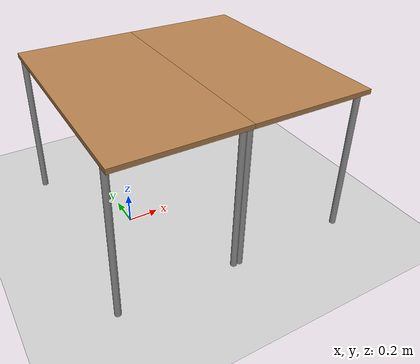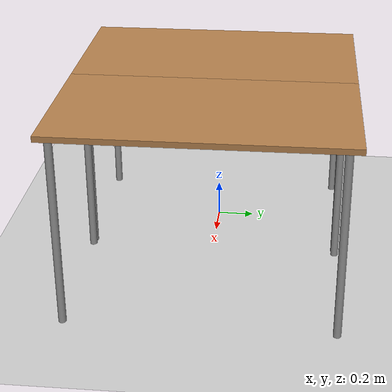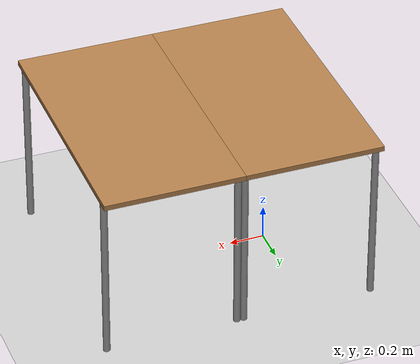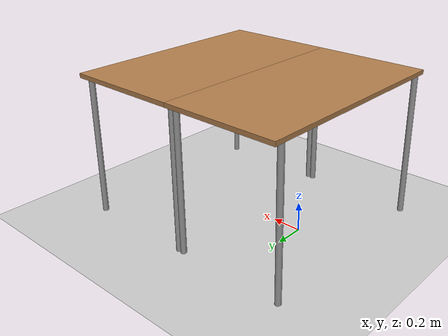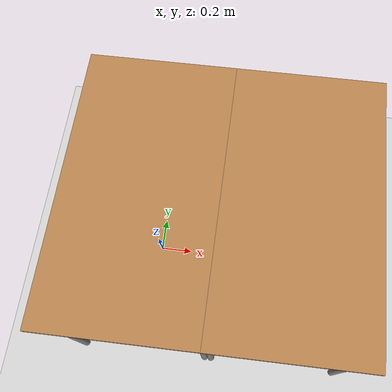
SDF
<sdf version='1.10'>
  <world name='empty'>
    <physics name='1ms' type='ignored'>
      <max_step_size>0.01</max_step_size>
      <real_time_factor>1</real_time_factor>
      <real_time_update_rate>1000</real_time_update_rate>
    </physics>
    <plugin name='gz::sim::systems::Physics' filename='gz-sim-physics-system'/>
    <plugin name='gz::sim::systems::UserCommands' filename='gz-sim-user-commands-system'/>
    <plugin name='gz::sim::systems::SceneBroadcaster' filename='gz-sim-scene-broadcaster-system'/>
    <plugin name='gz::sim::systems::Contact' filename='gz-sim-contact-system'/>
    <gravity>0 0 -9.8000000000000007</gravity>
    <magnetic_field>5.5644999999999998e-06 2.2875799999999999e-05 -4.2388400000000002e-05</magnetic_field>
    <atmosphere type='adiabatic'/>
    <scene>
      <ambient>0.400000006 0.400000006 0.400000006 1</ambient>
      <background>0.699999988 0.699999988 0.699999988 1</background>
      <shadows>true</shadows>
    </scene>
    <model name='ground_plane'>
      <static>true</static>
      <link name='link'>
        <collision name='collision'>
          <geometry>
            <plane>
              <normal>0 0 1</normal>
              <size>100 100</size>
            </plane>
          </geometry>
          <surface>
            <friction>
              <ode/>
            </friction>
            <bounce/>
            <contact/>
          </surface>
        </collision>
        <visual name='visual'>
          <geometry>
            <plane>
              <normal>0 0 1</normal>
              <size>100 100</size>
            </plane>
          </geometry>
          <material>
            <ambient>0.800000012 0.800000012 0.800000012 1</ambient>
            <diffuse>0.800000012 0.800000012 0.800000012 1</diffuse>
            <specular>0.800000012 0.800000012 0.800000012 1</specular>
          </material>
        </visual>
        <pose>0 0 0 0 0 0</pose>
        <inertial>
          <pose>0 0 0 0 0 0</pose>
          <mass>1</mass>
          <inertia>
            <ixx>1</ixx>
            <ixy>0</ixy>
            <ixz>0</ixz>
            <iyy>1</iyy>
            <iyz>0</iyz>
            <izz>1</izz>
          </inertia>
        </inertial>
        <enable_wind>false</enable_wind>
      </link>
      <pose>0 0 0 0 0 0</pose>
      <self_collide>false</self_collide>
    </model>
    <model name='Table'>
      <static>true</static>
      <link name='link'>
        <collision name='surface'>
          <pose>0 0 1 0 0 0</pose>
          <geometry>
            <box>
              <size>1.5 0.80000000000000004 0.029999999999999999</size>
            </box>
          </geometry>
          <surface>
            <friction>
              <ode>
                <mu>0.59999999999999998</mu>
                <mu2>0.59999999999999998</mu2>
              </ode>
            </friction>
            <bounce/>
            <contact/>
          </surface>
        </collision>
        <visual name='visual1'>
          <pose>0 0 1 0 0 0</pose>
          <geometry>
            <box>
              <size>1.5 0.80000000000000004 0.029999999999999999</size>
            </box>
          </geometry>
          <material>
            <diffuse>1 1 1 1</diffuse>
            <script>
              <uri>file://media/materials/scripts/gazebo.material</uri>
              <name>Gazebo/Wood</name>
            </script>
            <pbr>
              <metal>
                <albedo_map>https://fuel.gazebosim.org/1.0/openrobotics/models/table/4/files/Table_Diffuse.jpg</albedo_map>
              </metal>
            </pbr>
          </material>
        </visual>
        <collision name='front_left_leg'>
          <pose>0.68000000000000005 0.38 0.5 0 0 0</pose>
          <geometry>
            <cylinder>
              <radius>0.02</radius>
              <length>1</length>
            </cylinder>
          </geometry>
          <surface>
            <friction>
              <ode/>
            </friction>
            <bounce/>
            <contact/>
          </surface>
        </collision>
        <visual name='front_left_leg'>
          <pose>0.68000000000000005 0.38 0.5 0 0 0</pose>
          <geometry>
            <cylinder>
              <radius>0.02</radius>
              <length>1</length>
            </cylinder>
          </geometry>
          <material>
            <diffuse>0.5 0.5 0.5 1</diffuse>
            <script>
              <uri>file://media/materials/scripts/gazebo.material</uri>
              <name>Gazebo/Grey</name>
            </script>
          </material>
        </visual>
        <collision name='front_right_leg'>
          <pose>0.68000000000000005 -0.38 0.5 0 0 0</pose>
          <geometry>
            <cylinder>
              <radius>0.02</radius>
              <length>1</length>
            </cylinder>
          </geometry>
          <surface>
            <friction>
              <ode/>
            </friction>
            <bounce/>
            <contact/>
          </surface>
        </collision>
        <visual name='front_right_leg'>
          <pose>0.68000000000000005 -0.38 0.5 0 0 0</pose>
          <geometry>
            <cylinder>
              <radius>0.02</radius>
              <length>1</length>
            </cylinder>
          </geometry>
          <material>
            <diffuse>0.5 0.5 0.5 1</diffuse>
            <script>
              <uri>file://media/materials/scripts/gazebo.material</uri>
              <name>Gazebo/Grey</name>
            </script>
          </material>
        </visual>
        <collision name='back_right_leg'>
          <pose>-0.68000000000000005 -0.38 0.5 0 0 0</pose>
          <geometry>
            <cylinder>
              <radius>0.02</radius>
              <length>1</length>
            </cylinder>
          </geometry>
          <surface>
            <friction>
              <ode/>
            </friction>
            <bounce/>
            <contact/>
          </surface>
        </collision>
        <visual name='back_right_leg'>
          <pose>-0.68000000000000005 -0.38 0.5 0 0 0</pose>
          <geometry>
            <cylinder>
              <radius>0.02</radius>
              <length>1</length>
            </cylinder>
          </geometry>
          <material>
            <diffuse>0.5 0.5 0.5 1</diffuse>
            <script>
              <uri>file://media/materials/scripts/gazebo.material</uri>
              <name>Gazebo/Grey</name>
            </script>
          </material>
        </visual>
        <collision name='back_left_leg'>
          <pose>-0.68000000000000005 0.38 0.5 0 0 0</pose>
          <geometry>
            <cylinder>
              <radius>0.02</radius>
              <length>1</length>
            </cylinder>
          </geometry>
          <surface>
            <friction>
              <ode/>
            </friction>
            <bounce/>
            <contact/>
          </surface>
        </collision>
        <visual name='back_left_leg'>
          <pose>-0.68000000000000005 0.38 0.5 0 0 0</pose>
          <geometry>
            <cylinder>
              <radius>0.02</radius>
              <length>1</length>
            </cylinder>
          </geometry>
          <material>
            <diffuse>0.5 0.5 0.5 1</diffuse>
            <script>
              <uri>file://media/materials/scripts/gazebo.material</uri>
              <name>Gazebo/Grey</name>
            </script>
          </material>
        </visual>
        <pose>0 0 0 0 0 0</pose>
        <inertial>
          <pose>0 0 0 0 0 0</pose>
          <mass>1</mass>
          <inertia>
            <ixx>1</ixx>
            <ixy>0</ixy>
            <ixz>0</ixz>
            <iyy>1</iyy>
            <iyz>0</iyz>
            <izz>1</izz>
          </inertia>
        </inertial>
        <enable_wind>false</enable_wind>
      </link>
      <pose>0 0 0 0 0 1.57079</pose>
      <self_collide>false</self_collide>
    </model>
    <model name='Table_0'>
      <static>true</static>
      <link name='link'>
        <collision name='surface'>
          <pose>0 0 1 0 0 0</pose>
          <geometry>
            <box>
              <size>1.5 0.80000000000000004 0.029999999999999999</size>
            </box>
          </geometry>
          <surface>
            <friction>
              <ode>
                <mu>0.59999999999999998</mu>
                <mu2>0.59999999999999998</mu2>
              </ode>
            </friction>
            <bounce/>
            <contact/>
          </surface>
        </collision>
        <visual name='visual1'>
          <pose>0 0 1 0 0 0</pose>
          <geometry>
            <box>
              <size>1.5 0.80000000000000004 0.029999999999999999</size>
            </box>
          </geometry>
          <material>
            <diffuse>1 1 1 1</diffuse>
            <script>
              <uri>file://media/materials/scripts/gazebo.material</uri>
              <name>Gazebo/Wood</name>
            </script>
            <pbr>
              <metal>
                <albedo_map>https://fuel.gazebosim.org/1.0/openrobotics/models/table/4/files/Table_Diffuse.jpg</albedo_map>
              </metal>
            </pbr>
          </material>
        </visual>
        <collision name='front_left_leg'>
          <pose>0.68000000000000005 0.38 0.5 0 0 0</pose>
          <geometry>
            <cylinder>
              <radius>0.02</radius>
              <length>1</length>
            </cylinder>
          </geometry>
          <surface>
            <friction>
              <ode/>
            </friction>
            <bounce/>
            <contact/>
          </surface>
        </collision>
        <visual name='front_left_leg'>
          <pose>0.68000000000000005 0.38 0.5 0 0 0</pose>
          <geometry>
            <cylinder>
              <radius>0.02</radius>
              <length>1</length>
            </cylinder>
          </geometry>
          <material>
            <diffuse>0.5 0.5 0.5 1</diffuse>
            <script>
              <uri>file://media/materials/scripts/gazebo.material</uri>
              <name>Gazebo/Grey</name>
            </script>
          </material>
        </visual>
        <collision name='front_right_leg'>
          <pose>0.68000000000000005 -0.38 0.5 0 0 0</pose>
          <geometry>
            <cylinder>
              <radius>0.02</radius>
              <length>1</length>
            </cylinder>
          </geometry>
          <surface>
            <friction>
              <ode/>
            </friction>
            <bounce/>
            <contact/>
          </surface>
        </collision>
        <visual name='front_right_leg'>
          <pose>0.68000000000000005 -0.38 0.5 0 0 0</pose>
          <geometry>
            <cylinder>
              <radius>0.02</radius>
              <length>1</length>
            </cylinder>
          </geometry>
          <material>
            <diffuse>0.5 0.5 0.5 1</diffuse>
            <script>
              <uri>file://media/materials/scripts/gazebo.material</uri>
              <name>Gazebo/Grey</name>
            </script>
          </material>
        </visual>
        <collision name='back_right_leg'>
          <pose>-0.68000000000000005 -0.38 0.5 0 0 0</pose>
          <geometry>
            <cylinder>
              <radius>0.02</radius>
              <length>1</length>
            </cylinder>
          </geometry>
          <surface>
            <friction>
              <ode/>
            </friction>
            <bounce/>
            <contact/>
          </surface>
        </collision>
        <visual name='back_right_leg'>
          <pose>-0.68000000000000005 -0.38 0.5 0 0 0</pose>
          <geometry>
            <cylinder>
              <radius>0.02</radius>
              <length>1</length>
            </cylinder>
          </geometry>
          <material>
            <diffuse>0.5 0.5 0.5 1</diffuse>
            <script>
              <uri>file://media/materials/scripts/gazebo.material</uri>
              <name>Gazebo/Grey</name>
            </script>
          </material>
        </visual>
        <collision name='back_left_leg'>
          <pose>-0.68000000000000005 0.38 0.5 0 0 0</pose>
          <geometry>
            <cylinder>
              <radius>0.02</radius>
              <length>1</length>
            </cylinder>
          </geometry>
          <surface>
            <friction>
              <ode/>
            </friction>
            <bounce/>
            <contact/>
          </surface>
        </collision>
        <visual name='back_left_leg'>
          <pose>-0.68000000000000005 0.38 0.5 0 0 0</pose>
          <geometry>
            <cylinder>
              <radius>0.02</radius>
              <length>1</length>
            </cylinder>
          </geometry>
          <material>
            <diffuse>0.5 0.5 0.5 1</diffuse>
            <script>
              <uri>file://media/materials/scripts/gazebo.material</uri>
              <name>Gazebo/Grey</name>
            </script>
          </material>
        </visual>
        <pose>0 0 0 0 0 0</pose>
        <inertial>
          <pose>0 0 0 0 0 0</pose>
          <mass>1</mass>
          <inertia>
            <ixx>1</ixx>
            <ixy>0</ixy>
            <ixz>0</ixz>
            <iyy>1</iyy>
            <iyz>0</iyz>
            <izz>1</izz>
          </inertia>
        </inertial>
        <enable_wind>false</enable_wind>
      </link>
      <pose>0.8 0.0 0 0 0 1.57079</pose>
      <self_collide>false</self_collide>
    </model>
    <light name='sun' type='directional'>
      <pose>0 0 10 0 0 0</pose>
      <cast_shadows>true</cast_shadows>
      <intensity>1</intensity>
      <direction>-0.5 0.10000000000000001 -0.90000000000000002</direction>
      <diffuse>0.800000012 0.800000012 0.800000012 1</diffuse>
      <specular>0.200000003 0.200000003 0.200000003 1</specular>
      <attenuation>
        <range>1000</range>
        <linear>0.01</linear>
        <constant>0.90000000000000002</constant>
        <quadratic>0.001</quadratic>
      </attenuation>
      <spot>
        <inner_angle>0</inner_angle>
        <outer_angle>0</outer_angle>
        <falloff>0</falloff>
      </spot>
    </light>
  </world>
</sdf>
